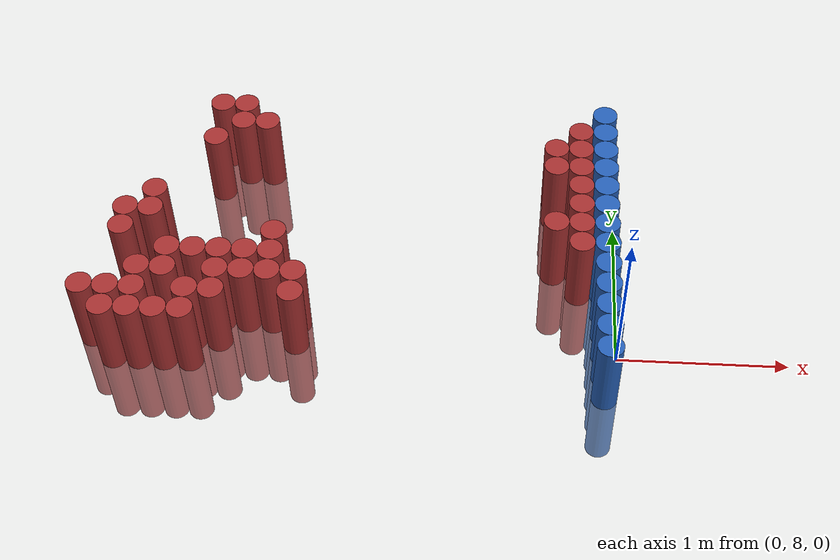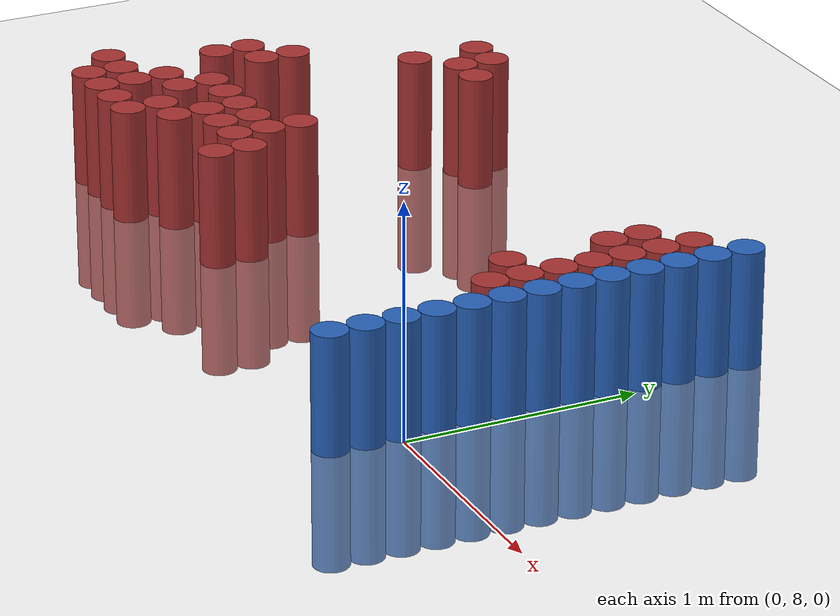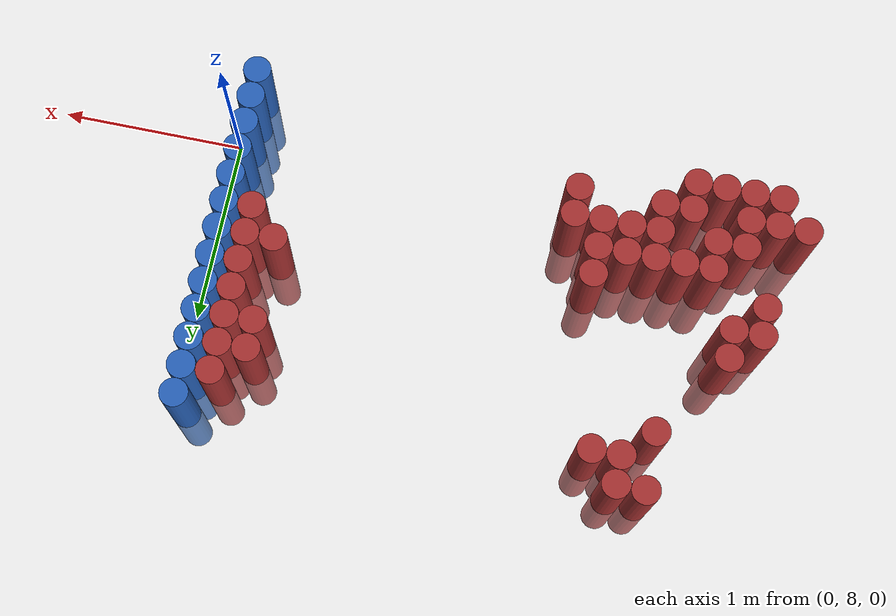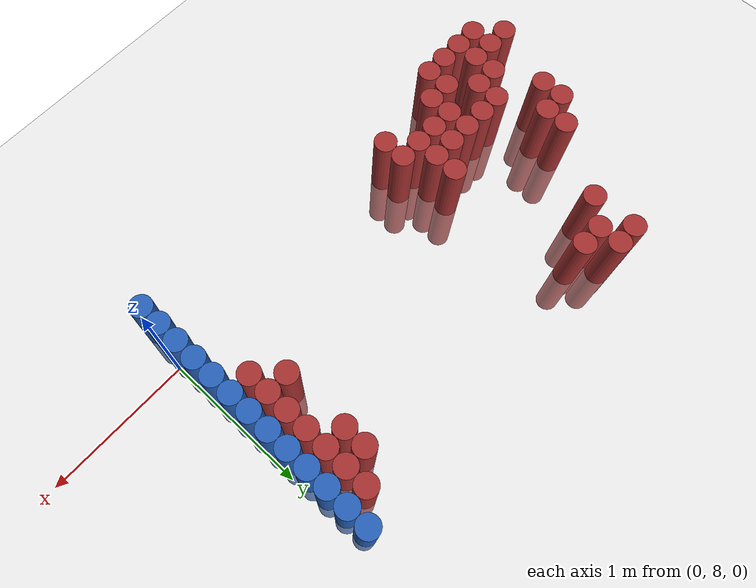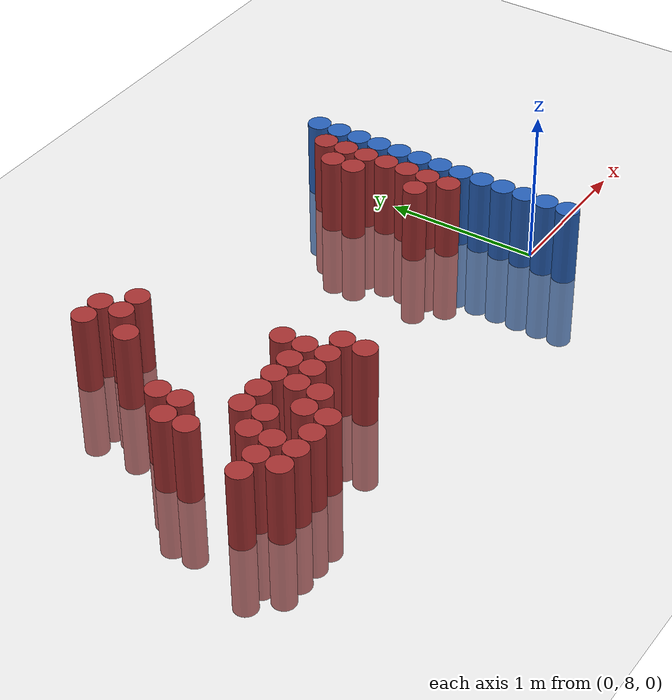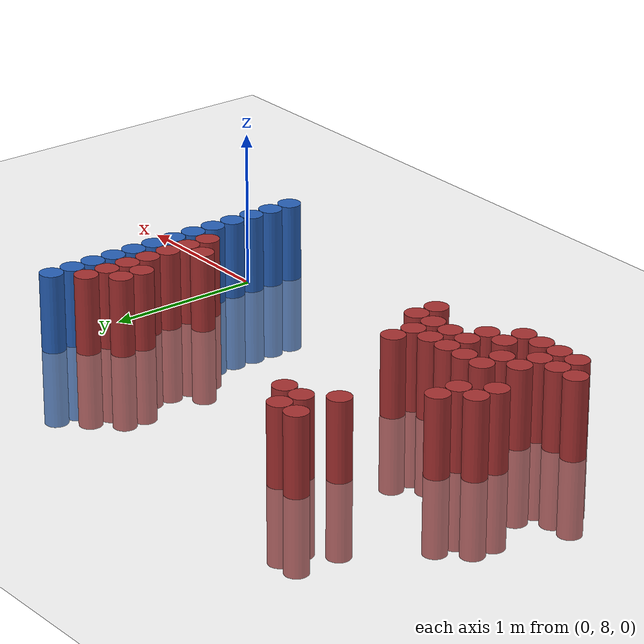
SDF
<sdf version="1.6">
 <world name="default">
  <model name="ground_plane">
   <static>1</static>
   <link name="link">
    <collision name="collision">
     <geometry><plane><normal>0 0 1</normal><size>100 100</size></plane></geometry>
     <surface><friction><ode><mu>100</mu><mu2>50</mu2></ode></friction></surface>
    </collision>
    <visual name="visual">
     <cast_shadows>0</cast_shadows>
     <geometry><plane><normal>0 0 1</normal><size>100 100</size></plane></geometry>
     <material>
      <script><uri>file://media/materials/scripts/gazebo.material</uri><name>Gazebo/Grey</name></script>
     </material>
    </visual>
   </link>
  </model>
  <model name="unit_cylinder_162">
   <static>1</static>
   <pose>-3.075000 8.025000 0.000000 0.000000 0.000000 0.000000</pose>
   <link name="link">
    <inertial>
     <mass>1</mass>
     <inertia><ixx>0.145833</ixx><ixy>0</ixy><ixz>0</ixz><iyy>0.145833</iyy><iyz>0</iyz><izz>0.125</izz></inertia>
    </inertial>
    <collision name="collision">
     <geometry><cylinder><radius>0.075000</radius><length>1</length></cylinder></geometry>
    </collision>
    <visual name="visual">
     <geometry><cylinder><radius>0.075000</radius><length>1</length></cylinder></geometry>
     <material>
      <ambient>0.648000 0.192000 0.192000 1</ambient>
      <diffuse>0.648000 0.192000 0.192000 1</diffuse>
     </material>
     <material>
      <script><name>Gazebo/Grey</name><uri>file://media/materials/scripts/gazebo.material</uri></script>
     </material>
    </visual>
   </link>
  </model>
  <model name="unit_cylinder_165">
   <static>1</static>
   <pose>-2.925000 7.875000 0.000000 0.000000 0.000000 0.000000</pose>
   <link name="link">
    <inertial>
     <mass>1</mass>
     <inertia><ixx>0.145833</ixx><ixy>0</ixy><ixz>0</ixz><iyy>0.145833</iyy><iyz>0</iyz><izz>0.125</izz></inertia>
    </inertial>
    <collision name="collision">
     <geometry><cylinder><radius>0.075000</radius><length>1</length></cylinder></geometry>
    </collision>
    <visual name="visual">
     <geometry><cylinder><radius>0.075000</radius><length>1</length></cylinder></geometry>
     <material>
      <ambient>0.648000 0.192000 0.192000 1</ambient>
      <diffuse>0.648000 0.192000 0.192000 1</diffuse>
     </material>
     <material>
      <script><name>Gazebo/Grey</name><uri>file://media/materials/scripts/gazebo.material</uri></script>
     </material>
    </visual>
   </link>
  </model>
  <model name="unit_cylinder_166">
   <static>1</static>
   <pose>-2.925000 8.025000 0.000000 0.000000 0.000000 0.000000</pose>
   <link name="link">
    <inertial>
     <mass>1</mass>
     <inertia><ixx>0.145833</ixx><ixy>0</ixy><ixz>0</ixz><iyy>0.145833</iyy><iyz>0</iyz><izz>0.125</izz></inertia>
    </inertial>
    <collision name="collision">
     <geometry><cylinder><radius>0.075000</radius><length>1</length></cylinder></geometry>
    </collision>
    <visual name="visual">
     <geometry><cylinder><radius>0.075000</radius><length>1</length></cylinder></geometry>
     <material>
      <ambient>0.648000 0.192000 0.192000 1</ambient>
      <diffuse>0.648000 0.192000 0.192000 1</diffuse>
     </material>
     <material>
      <script><name>Gazebo/Grey</name><uri>file://media/materials/scripts/gazebo.material</uri></script>
     </material>
    </visual>
   </link>
  </model>
  <model name="unit_cylinder_167">
   <static>1</static>
   <pose>-2.925000 8.475000 0.000000 0.000000 0.000000 0.000000</pose>
   <link name="link">
    <inertial>
     <mass>1</mass>
     <inertia><ixx>0.145833</ixx><ixy>0</ixy><ixz>0</ixz><iyy>0.145833</iyy><iyz>0</iyz><izz>0.125</izz></inertia>
    </inertial>
    <collision name="collision">
     <geometry><cylinder><radius>0.075000</radius><length>1</length></cylinder></geometry>
    </collision>
    <visual name="visual">
     <geometry><cylinder><radius>0.075000</radius><length>1</length></cylinder></geometry>
     <material>
      <ambient>0.648000 0.192000 0.192000 1</ambient>
      <diffuse>0.648000 0.192000 0.192000 1</diffuse>
     </material>
     <material>
      <script><name>Gazebo/Grey</name><uri>file://media/materials/scripts/gazebo.material</uri></script>
     </material>
    </visual>
   </link>
  </model>
  <model name="unit_cylinder_168">
   <static>1</static>
   <pose>-2.925000 8.625000 0.000000 0.000000 0.000000 0.000000</pose>
   <link name="link">
    <inertial>
     <mass>1</mass>
     <inertia><ixx>0.145833</ixx><ixy>0</ixy><ixz>0</ixz><iyy>0.145833</iyy><iyz>0</iyz><izz>0.125</izz></inertia>
    </inertial>
    <collision name="collision">
     <geometry><cylinder><radius>0.075000</radius><length>1</length></cylinder></geometry>
    </collision>
    <visual name="visual">
     <geometry><cylinder><radius>0.075000</radius><length>1</length></cylinder></geometry>
     <material>
      <ambient>0.648000 0.192000 0.192000 1</ambient>
      <diffuse>0.648000 0.192000 0.192000 1</diffuse>
     </material>
     <material>
      <script><name>Gazebo/Grey</name><uri>file://media/materials/scripts/gazebo.material</uri></script>
     </material>
    </visual>
   </link>
  </model>
  <model name="unit_cylinder_171">
   <static>1</static>
   <pose>-2.775000 7.875000 0.000000 0.000000 0.000000 0.000000</pose>
   <link name="link">
    <inertial>
     <mass>1</mass>
     <inertia><ixx>0.145833</ixx><ixy>0</ixy><ixz>0</ixz><iyy>0.145833</iyy><iyz>0</iyz><izz>0.125</izz></inertia>
    </inertial>
    <collision name="collision">
     <geometry><cylinder><radius>0.075000</radius><length>1</length></cylinder></geometry>
    </collision>
    <visual name="visual">
     <geometry><cylinder><radius>0.075000</radius><length>1</length></cylinder></geometry>
     <material>
      <ambient>0.648000 0.192000 0.192000 1</ambient>
      <diffuse>0.648000 0.192000 0.192000 1</diffuse>
     </material>
     <material>
      <script><name>Gazebo/Grey</name><uri>file://media/materials/scripts/gazebo.material</uri></script>
     </material>
    </visual>
   </link>
  </model>
  <model name="unit_cylinder_172">
   <static>1</static>
   <pose>-2.775000 8.025000 0.000000 0.000000 0.000000 0.000000</pose>
   <link name="link">
    <inertial>
     <mass>1</mass>
     <inertia><ixx>0.145833</ixx><ixy>0</ixy><ixz>0</ixz><iyy>0.145833</iyy><iyz>0</iyz><izz>0.125</izz></inertia>
    </inertial>
    <collision name="collision">
     <geometry><cylinder><radius>0.075000</radius><length>1</length></cylinder></geometry>
    </collision>
    <visual name="visual">
     <geometry><cylinder><radius>0.075000</radius><length>1</length></cylinder></geometry>
     <material>
      <ambient>0.648000 0.192000 0.192000 1</ambient>
      <diffuse>0.648000 0.192000 0.192000 1</diffuse>
     </material>
     <material>
      <script><name>Gazebo/Grey</name><uri>file://media/materials/scripts/gazebo.material</uri></script>
     </material>
    </visual>
   </link>
  </model>
  <model name="unit_cylinder_173">
   <static>1</static>
   <pose>-2.775000 8.175000 0.000000 0.000000 0.000000 0.000000</pose>
   <link name="link">
    <inertial>
     <mass>1</mass>
     <inertia><ixx>0.145833</ixx><ixy>0</ixy><ixz>0</ixz><iyy>0.145833</iyy><iyz>0</iyz><izz>0.125</izz></inertia>
    </inertial>
    <collision name="collision">
     <geometry><cylinder><radius>0.075000</radius><length>1</length></cylinder></geometry>
    </collision>
    <visual name="visual">
     <geometry><cylinder><radius>0.075000</radius><length>1</length></cylinder></geometry>
     <material>
      <ambient>0.648000 0.192000 0.192000 1</ambient>
      <diffuse>0.648000 0.192000 0.192000 1</diffuse>
     </material>
     <material>
      <script><name>Gazebo/Grey</name><uri>file://media/materials/scripts/gazebo.material</uri></script>
     </material>
    </visual>
   </link>
  </model>
  <model name="unit_cylinder_174">
   <static>1</static>
   <pose>-2.775000 8.625000 0.000000 0.000000 0.000000 0.000000</pose>
   <link name="link">
    <inertial>
     <mass>1</mass>
     <inertia><ixx>0.145833</ixx><ixy>0</ixy><ixz>0</ixz><iyy>0.145833</iyy><iyz>0</iyz><izz>0.125</izz></inertia>
    </inertial>
    <collision name="collision">
     <geometry><cylinder><radius>0.075000</radius><length>1</length></cylinder></geometry>
    </collision>
    <visual name="visual">
     <geometry><cylinder><radius>0.075000</radius><length>1</length></cylinder></geometry>
     <material>
      <ambient>0.648000 0.192000 0.192000 1</ambient>
      <diffuse>0.648000 0.192000 0.192000 1</diffuse>
     </material>
     <material>
      <script><name>Gazebo/Grey</name><uri>file://media/materials/scripts/gazebo.material</uri></script>
     </material>
    </visual>
   </link>
  </model>
  <model name="unit_cylinder_175">
   <static>1</static>
   <pose>-2.775000 8.775000 0.000000 0.000000 0.000000 0.000000</pose>
   <link name="link">
    <inertial>
     <mass>1</mass>
     <inertia><ixx>0.145833</ixx><ixy>0</ixy><ixz>0</ixz><iyy>0.145833</iyy><iyz>0</iyz><izz>0.125</izz></inertia>
    </inertial>
    <collision name="collision">
     <geometry><cylinder><radius>0.075000</radius><length>1</length></cylinder></geometry>
    </collision>
    <visual name="visual">
     <geometry><cylinder><radius>0.075000</radius><length>1</length></cylinder></geometry>
     <material>
      <ambient>0.648000 0.192000 0.192000 1</ambient>
      <diffuse>0.648000 0.192000 0.192000 1</diffuse>
     </material>
     <material>
      <script><name>Gazebo/Grey</name><uri>file://media/materials/scripts/gazebo.material</uri></script>
     </material>
    </visual>
   </link>
  </model>
  <model name="unit_cylinder_177">
   <static>1</static>
   <pose>-2.625000 7.875000 0.000000 0.000000 0.000000 0.000000</pose>
   <link name="link">
    <inertial>
     <mass>1</mass>
     <inertia><ixx>0.145833</ixx><ixy>0</ixy><ixz>0</ixz><iyy>0.145833</iyy><iyz>0</iyz><izz>0.125</izz></inertia>
    </inertial>
    <collision name="collision">
     <geometry><cylinder><radius>0.075000</radius><length>1</length></cylinder></geometry>
    </collision>
    <visual name="visual">
     <geometry><cylinder><radius>0.075000</radius><length>1</length></cylinder></geometry>
     <material>
      <ambient>0.648000 0.192000 0.192000 1</ambient>
      <diffuse>0.648000 0.192000 0.192000 1</diffuse>
     </material>
     <material>
      <script><name>Gazebo/Grey</name><uri>file://media/materials/scripts/gazebo.material</uri></script>
     </material>
    </visual>
   </link>
  </model>
  <model name="unit_cylinder_178">
   <static>1</static>
   <pose>-2.625000 8.175000 0.000000 0.000000 0.000000 0.000000</pose>
   <link name="link">
    <inertial>
     <mass>1</mass>
     <inertia><ixx>0.145833</ixx><ixy>0</ixy><ixz>0</ixz><iyy>0.145833</iyy><iyz>0</iyz><izz>0.125</izz></inertia>
    </inertial>
    <collision name="collision">
     <geometry><cylinder><radius>0.075000</radius><length>1</length></cylinder></geometry>
    </collision>
    <visual name="visual">
     <geometry><cylinder><radius>0.075000</radius><length>1</length></cylinder></geometry>
     <material>
      <ambient>0.648000 0.192000 0.192000 1</ambient>
      <diffuse>0.648000 0.192000 0.192000 1</diffuse>
     </material>
     <material>
      <script><name>Gazebo/Grey</name><uri>file://media/materials/scripts/gazebo.material</uri></script>
     </material>
    </visual>
   </link>
  </model>
  <model name="unit_cylinder_179">
   <static>1</static>
   <pose>-2.625000 8.325000 0.000000 0.000000 0.000000 0.000000</pose>
   <link name="link">
    <inertial>
     <mass>1</mass>
     <inertia><ixx>0.145833</ixx><ixy>0</ixy><ixz>0</ixz><iyy>0.145833</iyy><iyz>0</iyz><izz>0.125</izz></inertia>
    </inertial>
    <collision name="collision">
     <geometry><cylinder><radius>0.075000</radius><length>1</length></cylinder></geometry>
    </collision>
    <visual name="visual">
     <geometry><cylinder><radius>0.075000</radius><length>1</length></cylinder></geometry>
     <material>
      <ambient>0.648000 0.192000 0.192000 1</ambient>
      <diffuse>0.648000 0.192000 0.192000 1</diffuse>
     </material>
     <material>
      <script><name>Gazebo/Grey</name><uri>file://media/materials/scripts/gazebo.material</uri></script>
     </material>
    </visual>
   </link>
  </model>
  <model name="unit_cylinder_180">
   <static>1</static>
   <pose>-2.475000 7.875000 0.000000 0.000000 0.000000 0.000000</pose>
   <link name="link">
    <inertial>
     <mass>1</mass>
     <inertia><ixx>0.145833</ixx><ixy>0</ixy><ixz>0</ixz><iyy>0.145833</iyy><iyz>0</iyz><izz>0.125</izz></inertia>
    </inertial>
    <collision name="collision">
     <geometry><cylinder><radius>0.075000</radius><length>1</length></cylinder></geometry>
    </collision>
    <visual name="visual">
     <geometry><cylinder><radius>0.075000</radius><length>1</length></cylinder></geometry>
     <material>
      <ambient>0.648000 0.192000 0.192000 1</ambient>
      <diffuse>0.648000 0.192000 0.192000 1</diffuse>
     </material>
     <material>
      <script><name>Gazebo/Grey</name><uri>file://media/materials/scripts/gazebo.material</uri></script>
     </material>
    </visual>
   </link>
  </model>
  <model name="unit_cylinder_181">
   <static>1</static>
   <pose>-2.475000 8.025000 0.000000 0.000000 0.000000 0.000000</pose>
   <link name="link">
    <inertial>
     <mass>1</mass>
     <inertia><ixx>0.145833</ixx><ixy>0</ixy><ixz>0</ixz><iyy>0.145833</iyy><iyz>0</iyz><izz>0.125</izz></inertia>
    </inertial>
    <collision name="collision">
     <geometry><cylinder><radius>0.075000</radius><length>1</length></cylinder></geometry>
    </collision>
    <visual name="visual">
     <geometry><cylinder><radius>0.075000</radius><length>1</length></cylinder></geometry>
     <material>
      <ambient>0.648000 0.192000 0.192000 1</ambient>
      <diffuse>0.648000 0.192000 0.192000 1</diffuse>
     </material>
     <material>
      <script><name>Gazebo/Grey</name><uri>file://media/materials/scripts/gazebo.material</uri></script>
     </material>
    </visual>
   </link>
  </model>
  <model name="unit_cylinder_182">
   <static>1</static>
   <pose>-2.475000 8.325000 0.000000 0.000000 0.000000 0.000000</pose>
   <link name="link">
    <inertial>
     <mass>1</mass>
     <inertia><ixx>0.145833</ixx><ixy>0</ixy><ixz>0</ixz><iyy>0.145833</iyy><iyz>0</iyz><izz>0.125</izz></inertia>
    </inertial>
    <collision name="collision">
     <geometry><cylinder><radius>0.075000</radius><length>1</length></cylinder></geometry>
    </collision>
    <visual name="visual">
     <geometry><cylinder><radius>0.075000</radius><length>1</length></cylinder></geometry>
     <material>
      <ambient>0.648000 0.192000 0.192000 1</ambient>
      <diffuse>0.648000 0.192000 0.192000 1</diffuse>
     </material>
     <material>
      <script><name>Gazebo/Grey</name><uri>file://media/materials/scripts/gazebo.material</uri></script>
     </material>
    </visual>
   </link>
  </model>
  <model name="unit_cylinder_183">
   <static>1</static>
   <pose>-2.475000 9.225000 0.000000 0.000000 0.000000 0.000000</pose>
   <link name="link">
    <inertial>
     <mass>1</mass>
     <inertia><ixx>0.145833</ixx><ixy>0</ixy><ixz>0</ixz><iyy>0.145833</iyy><iyz>0</iyz><izz>0.125</izz></inertia>
    </inertial>
    <collision name="collision">
     <geometry><cylinder><radius>0.075000</radius><length>1</length></cylinder></geometry>
    </collision>
    <visual name="visual">
     <geometry><cylinder><radius>0.075000</radius><length>1</length></cylinder></geometry>
     <material>
      <ambient>0.648000 0.192000 0.192000 1</ambient>
      <diffuse>0.648000 0.192000 0.192000 1</diffuse>
     </material>
     <material>
      <script><name>Gazebo/Grey</name><uri>file://media/materials/scripts/gazebo.material</uri></script>
     </material>
    </visual>
   </link>
  </model>
  <model name="unit_cylinder_184">
   <static>1</static>
   <pose>-2.475000 9.525000 0.000000 0.000000 0.000000 0.000000</pose>
   <link name="link">
    <inertial>
     <mass>1</mass>
     <inertia><ixx>0.145833</ixx><ixy>0</ixy><ixz>0</ixz><iyy>0.145833</iyy><iyz>0</iyz><izz>0.125</izz></inertia>
    </inertial>
    <collision name="collision">
     <geometry><cylinder><radius>0.075000</radius><length>1</length></cylinder></geometry>
    </collision>
    <visual name="visual">
     <geometry><cylinder><radius>0.075000</radius><length>1</length></cylinder></geometry>
     <material>
      <ambient>0.648000 0.192000 0.192000 1</ambient>
      <diffuse>0.648000 0.192000 0.192000 1</diffuse>
     </material>
     <material>
      <script><name>Gazebo/Grey</name><uri>file://media/materials/scripts/gazebo.material</uri></script>
     </material>
    </visual>
   </link>
  </model>
  <model name="unit_cylinder_185">
   <static>1</static>
   <pose>-2.325000 8.025000 0.000000 0.000000 0.000000 0.000000</pose>
   <link name="link">
    <inertial>
     <mass>1</mass>
     <inertia><ixx>0.145833</ixx><ixy>0</ixy><ixz>0</ixz><iyy>0.145833</iyy><iyz>0</iyz><izz>0.125</izz></inertia>
    </inertial>
    <collision name="collision">
     <geometry><cylinder><radius>0.075000</radius><length>1</length></cylinder></geometry>
    </collision>
    <visual name="visual">
     <geometry><cylinder><radius>0.075000</radius><length>1</length></cylinder></geometry>
     <material>
      <ambient>0.648000 0.192000 0.192000 1</ambient>
      <diffuse>0.648000 0.192000 0.192000 1</diffuse>
     </material>
     <material>
      <script><name>Gazebo/Grey</name><uri>file://media/materials/scripts/gazebo.material</uri></script>
     </material>
    </visual>
   </link>
  </model>
  <model name="unit_cylinder_186">
   <static>1</static>
   <pose>-2.325000 8.175000 0.000000 0.000000 0.000000 0.000000</pose>
   <link name="link">
    <inertial>
     <mass>1</mass>
     <inertia><ixx>0.145833</ixx><ixy>0</ixy><ixz>0</ixz><iyy>0.145833</iyy><iyz>0</iyz><izz>0.125</izz></inertia>
    </inertial>
    <collision name="collision">
     <geometry><cylinder><radius>0.075000</radius><length>1</length></cylinder></geometry>
    </collision>
    <visual name="visual">
     <geometry><cylinder><radius>0.075000</radius><length>1</length></cylinder></geometry>
     <material>
      <ambient>0.648000 0.192000 0.192000 1</ambient>
      <diffuse>0.648000 0.192000 0.192000 1</diffuse>
     </material>
     <material>
      <script><name>Gazebo/Grey</name><uri>file://media/materials/scripts/gazebo.material</uri></script>
     </material>
    </visual>
   </link>
  </model>
  <model name="unit_cylinder_187">
   <static>1</static>
   <pose>-2.325000 8.325000 0.000000 0.000000 0.000000 0.000000</pose>
   <link name="link">
    <inertial>
     <mass>1</mass>
     <inertia><ixx>0.145833</ixx><ixy>0</ixy><ixz>0</ixz><iyy>0.145833</iyy><iyz>0</iyz><izz>0.125</izz></inertia>
    </inertial>
    <collision name="collision">
     <geometry><cylinder><radius>0.075000</radius><length>1</length></cylinder></geometry>
    </collision>
    <visual name="visual">
     <geometry><cylinder><radius>0.075000</radius><length>1</length></cylinder></geometry>
     <material>
      <ambient>0.648000 0.192000 0.192000 1</ambient>
      <diffuse>0.648000 0.192000 0.192000 1</diffuse>
     </material>
     <material>
      <script><name>Gazebo/Grey</name><uri>file://media/materials/scripts/gazebo.material</uri></script>
     </material>
    </visual>
   </link>
  </model>
  <model name="unit_cylinder_188">
   <static>1</static>
   <pose>-2.325000 9.375000 0.000000 0.000000 0.000000 0.000000</pose>
   <link name="link">
    <inertial>
     <mass>1</mass>
     <inertia><ixx>0.145833</ixx><ixy>0</ixy><ixz>0</ixz><iyy>0.145833</iyy><iyz>0</iyz><izz>0.125</izz></inertia>
    </inertial>
    <collision name="collision">
     <geometry><cylinder><radius>0.075000</radius><length>1</length></cylinder></geometry>
    </collision>
    <visual name="visual">
     <geometry><cylinder><radius>0.075000</radius><length>1</length></cylinder></geometry>
     <material>
      <ambient>0.648000 0.192000 0.192000 1</ambient>
      <diffuse>0.648000 0.192000 0.192000 1</diffuse>
     </material>
     <material>
      <script><name>Gazebo/Grey</name><uri>file://media/materials/scripts/gazebo.material</uri></script>
     </material>
    </visual>
   </link>
  </model>
  <model name="unit_cylinder_189">
   <static>1</static>
   <pose>-2.325000 9.525000 0.000000 0.000000 0.000000 0.000000</pose>
   <link name="link">
    <inertial>
     <mass>1</mass>
     <inertia><ixx>0.145833</ixx><ixy>0</ixy><ixz>0</ixz><iyy>0.145833</iyy><iyz>0</iyz><izz>0.125</izz></inertia>
    </inertial>
    <collision name="collision">
     <geometry><cylinder><radius>0.075000</radius><length>1</length></cylinder></geometry>
    </collision>
    <visual name="visual">
     <geometry><cylinder><radius>0.075000</radius><length>1</length></cylinder></geometry>
     <material>
      <ambient>0.648000 0.192000 0.192000 1</ambient>
      <diffuse>0.648000 0.192000 0.192000 1</diffuse>
     </material>
     <material>
      <script><name>Gazebo/Grey</name><uri>file://media/materials/scripts/gazebo.material</uri></script>
     </material>
    </visual>
   </link>
  </model>
  <model name="unit_cylinder_190">
   <static>1</static>
   <pose>-2.175000 8.175000 0.000000 0.000000 0.000000 0.000000</pose>
   <link name="link">
    <inertial>
     <mass>1</mass>
     <inertia><ixx>0.145833</ixx><ixy>0</ixy><ixz>0</ixz><iyy>0.145833</iyy><iyz>0</iyz><izz>0.125</izz></inertia>
    </inertial>
    <collision name="collision">
     <geometry><cylinder><radius>0.075000</radius><length>1</length></cylinder></geometry>
    </collision>
    <visual name="visual">
     <geometry><cylinder><radius>0.075000</radius><length>1</length></cylinder></geometry>
     <material>
      <ambient>0.648000 0.192000 0.192000 1</ambient>
      <diffuse>0.648000 0.192000 0.192000 1</diffuse>
     </material>
     <material>
      <script><name>Gazebo/Grey</name><uri>file://media/materials/scripts/gazebo.material</uri></script>
     </material>
    </visual>
   </link>
  </model>
  <model name="unit_cylinder_191">
   <static>1</static>
   <pose>-2.175000 8.325000 0.000000 0.000000 0.000000 0.000000</pose>
   <link name="link">
    <inertial>
     <mass>1</mass>
     <inertia><ixx>0.145833</ixx><ixy>0</ixy><ixz>0</ixz><iyy>0.145833</iyy><iyz>0</iyz><izz>0.125</izz></inertia>
    </inertial>
    <collision name="collision">
     <geometry><cylinder><radius>0.075000</radius><length>1</length></cylinder></geometry>
    </collision>
    <visual name="visual">
     <geometry><cylinder><radius>0.075000</radius><length>1</length></cylinder></geometry>
     <material>
      <ambient>0.648000 0.192000 0.192000 1</ambient>
      <diffuse>0.648000 0.192000 0.192000 1</diffuse>
     </material>
     <material>
      <script><name>Gazebo/Grey</name><uri>file://media/materials/scripts/gazebo.material</uri></script>
     </material>
    </visual>
   </link>
  </model>
  <model name="unit_cylinder_192">
   <static>1</static>
   <pose>-2.175000 9.375000 0.000000 0.000000 0.000000 0.000000</pose>
   <link name="link">
    <inertial>
     <mass>1</mass>
     <inertia><ixx>0.145833</ixx><ixy>0</ixy><ixz>0</ixz><iyy>0.145833</iyy><iyz>0</iyz><izz>0.125</izz></inertia>
    </inertial>
    <collision name="collision">
     <geometry><cylinder><radius>0.075000</radius><length>1</length></cylinder></geometry>
    </collision>
    <visual name="visual">
     <geometry><cylinder><radius>0.075000</radius><length>1</length></cylinder></geometry>
     <material>
      <ambient>0.648000 0.192000 0.192000 1</ambient>
      <diffuse>0.648000 0.192000 0.192000 1</diffuse>
     </material>
     <material>
      <script><name>Gazebo/Grey</name><uri>file://media/materials/scripts/gazebo.material</uri></script>
     </material>
    </visual>
   </link>
  </model>
  <model name="unit_cylinder_193">
   <static>1</static>
   <pose>-2.025000 8.175000 0.000000 0.000000 0.000000 0.000000</pose>
   <link name="link">
    <inertial>
     <mass>1</mass>
     <inertia><ixx>0.145833</ixx><ixy>0</ixy><ixz>0</ixz><iyy>0.145833</iyy><iyz>0</iyz><izz>0.125</izz></inertia>
    </inertial>
    <collision name="collision">
     <geometry><cylinder><radius>0.075000</radius><length>1</length></cylinder></geometry>
    </collision>
    <visual name="visual">
     <geometry><cylinder><radius>0.075000</radius><length>1</length></cylinder></geometry>
     <material>
      <ambient>0.648000 0.192000 0.192000 1</ambient>
      <diffuse>0.648000 0.192000 0.192000 1</diffuse>
     </material>
     <material>
      <script><name>Gazebo/Grey</name><uri>file://media/materials/scripts/gazebo.material</uri></script>
     </material>
    </visual>
   </link>
  </model>
  <model name="unit_cylinder_194">
   <static>1</static>
   <pose>-2.025000 8.325000 0.000000 0.000000 0.000000 0.000000</pose>
   <link name="link">
    <inertial>
     <mass>1</mass>
     <inertia><ixx>0.145833</ixx><ixy>0</ixy><ixz>0</ixz><iyy>0.145833</iyy><iyz>0</iyz><izz>0.125</izz></inertia>
    </inertial>
    <collision name="collision">
     <geometry><cylinder><radius>0.075000</radius><length>1</length></cylinder></geometry>
    </collision>
    <visual name="visual">
     <geometry><cylinder><radius>0.075000</radius><length>1</length></cylinder></geometry>
     <material>
      <ambient>0.648000 0.192000 0.192000 1</ambient>
      <diffuse>0.648000 0.192000 0.192000 1</diffuse>
     </material>
     <material>
      <script><name>Gazebo/Grey</name><uri>file://media/materials/scripts/gazebo.material</uri></script>
     </material>
    </visual>
   </link>
  </model>
  <model name="unit_cylinder_195">
   <static>1</static>
   <pose>-2.025000 8.475000 0.000000 0.000000 0.000000 0.000000</pose>
   <link name="link">
    <inertial>
     <mass>1</mass>
     <inertia><ixx>0.145833</ixx><ixy>0</ixy><ixz>0</ixz><iyy>0.145833</iyy><iyz>0</iyz><izz>0.125</izz></inertia>
    </inertial>
    <collision name="collision">
     <geometry><cylinder><radius>0.075000</radius><length>1</length></cylinder></geometry>
    </collision>
    <visual name="visual">
     <geometry><cylinder><radius>0.075000</radius><length>1</length></cylinder></geometry>
     <material>
      <ambient>0.648000 0.192000 0.192000 1</ambient>
      <diffuse>0.648000 0.192000 0.192000 1</diffuse>
     </material>
     <material>
      <script><name>Gazebo/Grey</name><uri>file://media/materials/scripts/gazebo.material</uri></script>
     </material>
    </visual>
   </link>
  </model>
  <model name="unit_cylinder_199">
   <static>1</static>
   <pose>-1.875000 8.025000 0.000000 0.000000 0.000000 0.000000</pose>
   <link name="link">
    <inertial>
     <mass>1</mass>
     <inertia><ixx>0.145833</ixx><ixy>0</ixy><ixz>0</ixz><iyy>0.145833</iyy><iyz>0</iyz><izz>0.125</izz></inertia>
    </inertial>
    <collision name="collision">
     <geometry><cylinder><radius>0.075000</radius><length>1</length></cylinder></geometry>
    </collision>
    <visual name="visual">
     <geometry><cylinder><radius>0.075000</radius><length>1</length></cylinder></geometry>
     <material>
      <ambient>0.648000 0.192000 0.192000 1</ambient>
      <diffuse>0.648000 0.192000 0.192000 1</diffuse>
     </material>
     <material>
      <script><name>Gazebo/Grey</name><uri>file://media/materials/scripts/gazebo.material</uri></script>
     </material>
    </visual>
   </link>
  </model>
  <model name="unit_cylinder_200">
   <static>1</static>
   <pose>-1.875000 8.175000 0.000000 0.000000 0.000000 0.000000</pose>
   <link name="link">
    <inertial>
     <mass>1</mass>
     <inertia><ixx>0.145833</ixx><ixy>0</ixy><ixz>0</ixz><iyy>0.145833</iyy><iyz>0</iyz><izz>0.125</izz></inertia>
    </inertial>
    <collision name="collision">
     <geometry><cylinder><radius>0.075000</radius><length>1</length></cylinder></geometry>
    </collision>
    <visual name="visual">
     <geometry><cylinder><radius>0.075000</radius><length>1</length></cylinder></geometry>
     <material>
      <ambient>0.648000 0.192000 0.192000 1</ambient>
      <diffuse>0.648000 0.192000 0.192000 1</diffuse>
     </material>
     <material>
      <script><name>Gazebo/Grey</name><uri>file://media/materials/scripts/gazebo.material</uri></script>
     </material>
    </visual>
   </link>
  </model>
  <model name="unit_cylinder_224">
   <static>1</static>
   <pose>-0.375000 8.625000 0.000000 0.000000 0.000000 0.000000</pose>
   <link name="link">
    <inertial>
     <mass>1</mass>
     <inertia><ixx>0.145833</ixx><ixy>0</ixy><ixz>0</ixz><iyy>0.145833</iyy><iyz>0</iyz><izz>0.125</izz></inertia>
    </inertial>
    <collision name="collision">
     <geometry><cylinder><radius>0.075000</radius><length>1</length></cylinder></geometry>
    </collision>
    <visual name="visual">
     <geometry><cylinder><radius>0.075000</radius><length>1</length></cylinder></geometry>
     <material>
      <ambient>0.648000 0.192000 0.192000 1</ambient>
      <diffuse>0.648000 0.192000 0.192000 1</diffuse>
     </material>
     <material>
      <script><name>Gazebo/Grey</name><uri>file://media/materials/scripts/gazebo.material</uri></script>
     </material>
    </visual>
   </link>
  </model>
  <model name="unit_cylinder_225">
   <static>1</static>
   <pose>-0.375000 9.075000 0.000000 0.000000 0.000000 0.000000</pose>
   <link name="link">
    <inertial>
     <mass>1</mass>
     <inertia><ixx>0.145833</ixx><ixy>0</ixy><ixz>0</ixz><iyy>0.145833</iyy><iyz>0</iyz><izz>0.125</izz></inertia>
    </inertial>
    <collision name="collision">
     <geometry><cylinder><radius>0.075000</radius><length>1</length></cylinder></geometry>
    </collision>
    <visual name="visual">
     <geometry><cylinder><radius>0.075000</radius><length>1</length></cylinder></geometry>
     <material>
      <ambient>0.648000 0.192000 0.192000 1</ambient>
      <diffuse>0.648000 0.192000 0.192000 1</diffuse>
     </material>
     <material>
      <script><name>Gazebo/Grey</name><uri>file://media/materials/scripts/gazebo.material</uri></script>
     </material>
    </visual>
   </link>
  </model>
  <model name="unit_cylinder_226">
   <static>1</static>
   <pose>-0.375000 9.225000 0.000000 0.000000 0.000000 0.000000</pose>
   <link name="link">
    <inertial>
     <mass>1</mass>
     <inertia><ixx>0.145833</ixx><ixy>0</ixy><ixz>0</ixz><iyy>0.145833</iyy><iyz>0</iyz><izz>0.125</izz></inertia>
    </inertial>
    <collision name="collision">
     <geometry><cylinder><radius>0.075000</radius><length>1</length></cylinder></geometry>
    </collision>
    <visual name="visual">
     <geometry><cylinder><radius>0.075000</radius><length>1</length></cylinder></geometry>
     <material>
      <ambient>0.648000 0.192000 0.192000 1</ambient>
      <diffuse>0.648000 0.192000 0.192000 1</diffuse>
     </material>
     <material>
      <script><name>Gazebo/Grey</name><uri>file://media/materials/scripts/gazebo.material</uri></script>
     </material>
    </visual>
   </link>
  </model>
  <model name="unit_cylinder_232">
   <static>1</static>
   <pose>-0.225000 8.475000 0.000000 0.000000 0.000000 0.000000</pose>
   <link name="link">
    <inertial>
     <mass>1</mass>
     <inertia><ixx>0.145833</ixx><ixy>0</ixy><ixz>0</ixz><iyy>0.145833</iyy><iyz>0</iyz><izz>0.125</izz></inertia>
    </inertial>
    <collision name="collision">
     <geometry><cylinder><radius>0.075000</radius><length>1</length></cylinder></geometry>
    </collision>
    <visual name="visual">
     <geometry><cylinder><radius>0.075000</radius><length>1</length></cylinder></geometry>
     <material>
      <ambient>0.648000 0.192000 0.192000 1</ambient>
      <diffuse>0.648000 0.192000 0.192000 1</diffuse>
     </material>
     <material>
      <script><name>Gazebo/Grey</name><uri>file://media/materials/scripts/gazebo.material</uri></script>
     </material>
    </visual>
   </link>
  </model>
  <model name="unit_cylinder_233">
   <static>1</static>
   <pose>-0.225000 8.625000 0.000000 0.000000 0.000000 0.000000</pose>
   <link name="link">
    <inertial>
     <mass>1</mass>
     <inertia><ixx>0.145833</ixx><ixy>0</ixy><ixz>0</ixz><iyy>0.145833</iyy><iyz>0</iyz><izz>0.125</izz></inertia>
    </inertial>
    <collision name="collision">
     <geometry><cylinder><radius>0.075000</radius><length>1</length></cylinder></geometry>
    </collision>
    <visual name="visual">
     <geometry><cylinder><radius>0.075000</radius><length>1</length></cylinder></geometry>
     <material>
      <ambient>0.648000 0.192000 0.192000 1</ambient>
      <diffuse>0.648000 0.192000 0.192000 1</diffuse>
     </material>
     <material>
      <script><name>Gazebo/Grey</name><uri>file://media/materials/scripts/gazebo.material</uri></script>
     </material>
    </visual>
   </link>
  </model>
  <model name="unit_cylinder_234">
   <static>1</static>
   <pose>-0.225000 8.775000 0.000000 0.000000 0.000000 0.000000</pose>
   <link name="link">
    <inertial>
     <mass>1</mass>
     <inertia><ixx>0.145833</ixx><ixy>0</ixy><ixz>0</ixz><iyy>0.145833</iyy><iyz>0</iyz><izz>0.125</izz></inertia>
    </inertial>
    <collision name="collision">
     <geometry><cylinder><radius>0.075000</radius><length>1</length></cylinder></geometry>
    </collision>
    <visual name="visual">
     <geometry><cylinder><radius>0.075000</radius><length>1</length></cylinder></geometry>
     <material>
      <ambient>0.648000 0.192000 0.192000 1</ambient>
      <diffuse>0.648000 0.192000 0.192000 1</diffuse>
     </material>
     <material>
      <script><name>Gazebo/Grey</name><uri>file://media/materials/scripts/gazebo.material</uri></script>
     </material>
    </visual>
   </link>
  </model>
  <model name="unit_cylinder_235">
   <static>1</static>
   <pose>-0.225000 8.925000 0.000000 0.000000 0.000000 0.000000</pose>
   <link name="link">
    <inertial>
     <mass>1</mass>
     <inertia><ixx>0.145833</ixx><ixy>0</ixy><ixz>0</ixz><iyy>0.145833</iyy><iyz>0</iyz><izz>0.125</izz></inertia>
    </inertial>
    <collision name="collision">
     <geometry><cylinder><radius>0.075000</radius><length>1</length></cylinder></geometry>
    </collision>
    <visual name="visual">
     <geometry><cylinder><radius>0.075000</radius><length>1</length></cylinder></geometry>
     <material>
      <ambient>0.648000 0.192000 0.192000 1</ambient>
      <diffuse>0.648000 0.192000 0.192000 1</diffuse>
     </material>
     <material>
      <script><name>Gazebo/Grey</name><uri>file://media/materials/scripts/gazebo.material</uri></script>
     </material>
    </visual>
   </link>
  </model>
  <model name="unit_cylinder_236">
   <static>1</static>
   <pose>-0.225000 9.075000 0.000000 0.000000 0.000000 0.000000</pose>
   <link name="link">
    <inertial>
     <mass>1</mass>
     <inertia><ixx>0.145833</ixx><ixy>0</ixy><ixz>0</ixz><iyy>0.145833</iyy><iyz>0</iyz><izz>0.125</izz></inertia>
    </inertial>
    <collision name="collision">
     <geometry><cylinder><radius>0.075000</radius><length>1</length></cylinder></geometry>
    </collision>
    <visual name="visual">
     <geometry><cylinder><radius>0.075000</radius><length>1</length></cylinder></geometry>
     <material>
      <ambient>0.648000 0.192000 0.192000 1</ambient>
      <diffuse>0.648000 0.192000 0.192000 1</diffuse>
     </material>
     <material>
      <script><name>Gazebo/Grey</name><uri>file://media/materials/scripts/gazebo.material</uri></script>
     </material>
    </visual>
   </link>
  </model>
  <model name="unit_cylinder_237">
   <static>1</static>
   <pose>-0.225000 9.225000 0.000000 0.000000 0.000000 0.000000</pose>
   <link name="link">
    <inertial>
     <mass>1</mass>
     <inertia><ixx>0.145833</ixx><ixy>0</ixy><ixz>0</ixz><iyy>0.145833</iyy><iyz>0</iyz><izz>0.125</izz></inertia>
    </inertial>
    <collision name="collision">
     <geometry><cylinder><radius>0.075000</radius><length>1</length></cylinder></geometry>
    </collision>
    <visual name="visual">
     <geometry><cylinder><radius>0.075000</radius><length>1</length></cylinder></geometry>
     <material>
      <ambient>0.648000 0.192000 0.192000 1</ambient>
      <diffuse>0.648000 0.192000 0.192000 1</diffuse>
     </material>
     <material>
      <script><name>Gazebo/Grey</name><uri>file://media/materials/scripts/gazebo.material</uri></script>
     </material>
    </visual>
   </link>
  </model>
  <model name="unit_cylinder_238">
   <static>1</static>
   <pose>-0.225000 9.375000 0.000000 0.000000 0.000000 0.000000</pose>
   <link name="link">
    <inertial>
     <mass>1</mass>
     <inertia><ixx>0.145833</ixx><ixy>0</ixy><ixz>0</ixz><iyy>0.145833</iyy><iyz>0</iyz><izz>0.125</izz></inertia>
    </inertial>
    <collision name="collision">
     <geometry><cylinder><radius>0.075000</radius><length>1</length></cylinder></geometry>
    </collision>
    <visual name="visual">
     <geometry><cylinder><radius>0.075000</radius><length>1</length></cylinder></geometry>
     <material>
      <ambient>0.648000 0.192000 0.192000 1</ambient>
      <diffuse>0.648000 0.192000 0.192000 1</diffuse>
     </material>
     <material>
      <script><name>Gazebo/Grey</name><uri>file://media/materials/scripts/gazebo.material</uri></script>
     </material>
    </visual>
   </link>
  </model>
  <model name="unit_cylinder_256">
   <static>1</static>
   <pose>-0.075000 7.725000 0.000000 0.000000 0.000000 0.000000</pose>
   <link name="link">
    <inertial>
     <mass>1</mass>
     <inertia><ixx>0.145833</ixx><ixy>0</ixy><ixz>0</ixz><iyy>0.145833</iyy><iyz>0</iyz><izz>0.125</izz></inertia>
    </inertial>
    <collision name="collision">
     <geometry><cylinder><radius>0.075000</radius><length>1</length></cylinder></geometry>
    </collision>
    <visual name="visual">
     <geometry><cylinder><radius>0.075000</radius><length>1</length></cylinder></geometry>
     <material>
      <ambient>0.152000 0.379000 0.720000 1</ambient>
      <diffuse>0.152000 0.379000 0.720000 1</diffuse>
     </material>
     <material>
      <script><name>Gazebo/Grey</name><uri>file://media/materials/scripts/gazebo.material</uri></script>
     </material>
    </visual>
   </link>
  </model>
  <model name="unit_cylinder_257">
   <static>1</static>
   <pose>-0.075000 7.875000 0.000000 0.000000 0.000000 0.000000</pose>
   <link name="link">
    <inertial>
     <mass>1</mass>
     <inertia><ixx>0.145833</ixx><ixy>0</ixy><ixz>0</ixz><iyy>0.145833</iyy><iyz>0</iyz><izz>0.125</izz></inertia>
    </inertial>
    <collision name="collision">
     <geometry><cylinder><radius>0.075000</radius><length>1</length></cylinder></geometry>
    </collision>
    <visual name="visual">
     <geometry><cylinder><radius>0.075000</radius><length>1</length></cylinder></geometry>
     <material>
      <ambient>0.152000 0.379000 0.720000 1</ambient>
      <diffuse>0.152000 0.379000 0.720000 1</diffuse>
     </material>
     <material>
      <script><name>Gazebo/Grey</name><uri>file://media/materials/scripts/gazebo.material</uri></script>
     </material>
    </visual>
   </link>
  </model>
  <model name="unit_cylinder_258">
   <static>1</static>
   <pose>-0.075000 8.025000 0.000000 0.000000 0.000000 0.000000</pose>
   <link name="link">
    <inertial>
     <mass>1</mass>
     <inertia><ixx>0.145833</ixx><ixy>0</ixy><ixz>0</ixz><iyy>0.145833</iyy><iyz>0</iyz><izz>0.125</izz></inertia>
    </inertial>
    <collision name="collision">
     <geometry><cylinder><radius>0.075000</radius><length>1</length></cylinder></geometry>
    </collision>
    <visual name="visual">
     <geometry><cylinder><radius>0.075000</radius><length>1</length></cylinder></geometry>
     <material>
      <ambient>0.152000 0.379000 0.720000 1</ambient>
      <diffuse>0.152000 0.379000 0.720000 1</diffuse>
     </material>
     <material>
      <script><name>Gazebo/Grey</name><uri>file://media/materials/scripts/gazebo.material</uri></script>
     </material>
    </visual>
   </link>
  </model>
  <model name="unit_cylinder_259">
   <static>1</static>
   <pose>-0.075000 8.175000 0.000000 0.000000 0.000000 0.000000</pose>
   <link name="link">
    <inertial>
     <mass>1</mass>
     <inertia><ixx>0.145833</ixx><ixy>0</ixy><ixz>0</ixz><iyy>0.145833</iyy><iyz>0</iyz><izz>0.125</izz></inertia>
    </inertial>
    <collision name="collision">
     <geometry><cylinder><radius>0.075000</radius><length>1</length></cylinder></geometry>
    </collision>
    <visual name="visual">
     <geometry><cylinder><radius>0.075000</radius><length>1</length></cylinder></geometry>
     <material>
      <ambient>0.152000 0.379000 0.720000 1</ambient>
      <diffuse>0.152000 0.379000 0.720000 1</diffuse>
     </material>
     <material>
      <script><name>Gazebo/Grey</name><uri>file://media/materials/scripts/gazebo.material</uri></script>
     </material>
    </visual>
   </link>
  </model>
  <model name="unit_cylinder_260">
   <static>1</static>
   <pose>-0.075000 8.325000 0.000000 0.000000 0.000000 0.000000</pose>
   <link name="link">
    <inertial>
     <mass>1</mass>
     <inertia><ixx>0.145833</ixx><ixy>0</ixy><ixz>0</ixz><iyy>0.145833</iyy><iyz>0</iyz><izz>0.125</izz></inertia>
    </inertial>
    <collision name="collision">
     <geometry><cylinder><radius>0.075000</radius><length>1</length></cylinder></geometry>
    </collision>
    <visual name="visual">
     <geometry><cylinder><radius>0.075000</radius><length>1</length></cylinder></geometry>
     <material>
      <ambient>0.152000 0.379000 0.720000 1</ambient>
      <diffuse>0.152000 0.379000 0.720000 1</diffuse>
     </material>
     <material>
      <script><name>Gazebo/Grey</name><uri>file://media/materials/scripts/gazebo.material</uri></script>
     </material>
    </visual>
   </link>
  </model>
  <model name="unit_cylinder_261">
   <static>1</static>
   <pose>-0.075000 8.475000 0.000000 0.000000 0.000000 0.000000</pose>
   <link name="link">
    <inertial>
     <mass>1</mass>
     <inertia><ixx>0.145833</ixx><ixy>0</ixy><ixz>0</ixz><iyy>0.145833</iyy><iyz>0</iyz><izz>0.125</izz></inertia>
    </inertial>
    <collision name="collision">
     <geometry><cylinder><radius>0.075000</radius><length>1</length></cylinder></geometry>
    </collision>
    <visual name="visual">
     <geometry><cylinder><radius>0.075000</radius><length>1</length></cylinder></geometry>
     <material>
      <ambient>0.152000 0.379000 0.720000 1</ambient>
      <diffuse>0.152000 0.379000 0.720000 1</diffuse>
     </material>
     <material>
      <script><name>Gazebo/Grey</name><uri>file://media/materials/scripts/gazebo.material</uri></script>
     </material>
    </visual>
   </link>
  </model>
  <model name="unit_cylinder_262">
   <static>1</static>
   <pose>-0.075000 8.625000 0.000000 0.000000 0.000000 0.000000</pose>
   <link name="link">
    <inertial>
     <mass>1</mass>
     <inertia><ixx>0.145833</ixx><ixy>0</ixy><ixz>0</ixz><iyy>0.145833</iyy><iyz>0</iyz><izz>0.125</izz></inertia>
    </inertial>
    <collision name="collision">
     <geometry><cylinder><radius>0.075000</radius><length>1</length></cylinder></geometry>
    </collision>
    <visual name="visual">
     <geometry><cylinder><radius>0.075000</radius><length>1</length></cylinder></geometry>
     <material>
      <ambient>0.152000 0.379000 0.720000 1</ambient>
      <diffuse>0.152000 0.379000 0.720000 1</diffuse>
     </material>
     <material>
      <script><name>Gazebo/Grey</name><uri>file://media/materials/scripts/gazebo.material</uri></script>
     </material>
    </visual>
   </link>
  </model>
  <model name="unit_cylinder_263">
   <static>1</static>
   <pose>-0.075000 8.775000 0.000000 0.000000 0.000000 0.000000</pose>
   <link name="link">
    <inertial>
     <mass>1</mass>
     <inertia><ixx>0.145833</ixx><ixy>0</ixy><ixz>0</ixz><iyy>0.145833</iyy><iyz>0</iyz><izz>0.125</izz></inertia>
    </inertial>
    <collision name="collision">
     <geometry><cylinder><radius>0.075000</radius><length>1</length></cylinder></geometry>
    </collision>
    <visual name="visual">
     <geometry><cylinder><radius>0.075000</radius><length>1</length></cylinder></geometry>
     <material>
      <ambient>0.152000 0.379000 0.720000 1</ambient>
      <diffuse>0.152000 0.379000 0.720000 1</diffuse>
     </material>
     <material>
      <script><name>Gazebo/Grey</name><uri>file://media/materials/scripts/gazebo.material</uri></script>
     </material>
    </visual>
   </link>
  </model>
  <model name="unit_cylinder_264">
   <static>1</static>
   <pose>-0.075000 8.925000 0.000000 0.000000 0.000000 0.000000</pose>
   <link name="link">
    <inertial>
     <mass>1</mass>
     <inertia><ixx>0.145833</ixx><ixy>0</ixy><ixz>0</ixz><iyy>0.145833</iyy><iyz>0</iyz><izz>0.125</izz></inertia>
    </inertial>
    <collision name="collision">
     <geometry><cylinder><radius>0.075000</radius><length>1</length></cylinder></geometry>
    </collision>
    <visual name="visual">
     <geometry><cylinder><radius>0.075000</radius><length>1</length></cylinder></geometry>
     <material>
      <ambient>0.152000 0.379000 0.720000 1</ambient>
      <diffuse>0.152000 0.379000 0.720000 1</diffuse>
     </material>
     <material>
      <script><name>Gazebo/Grey</name><uri>file://media/materials/scripts/gazebo.material</uri></script>
     </material>
    </visual>
   </link>
  </model>
  <model name="unit_cylinder_265">
   <static>1</static>
   <pose>-0.075000 9.075000 0.000000 0.000000 0.000000 0.000000</pose>
   <link name="link">
    <inertial>
     <mass>1</mass>
     <inertia><ixx>0.145833</ixx><ixy>0</ixy><ixz>0</ixz><iyy>0.145833</iyy><iyz>0</iyz><izz>0.125</izz></inertia>
    </inertial>
    <collision name="collision">
     <geometry><cylinder><radius>0.075000</radius><length>1</length></cylinder></geometry>
    </collision>
    <visual name="visual">
     <geometry><cylinder><radius>0.075000</radius><length>1</length></cylinder></geometry>
     <material>
      <ambient>0.152000 0.379000 0.720000 1</ambient>
      <diffuse>0.152000 0.379000 0.720000 1</diffuse>
     </material>
     <material>
      <script><name>Gazebo/Grey</name><uri>file://media/materials/scripts/gazebo.material</uri></script>
     </material>
    </visual>
   </link>
  </model>
  <model name="unit_cylinder_266">
   <static>1</static>
   <pose>-0.075000 9.225000 0.000000 0.000000 0.000000 0.000000</pose>
   <link name="link">
    <inertial>
     <mass>1</mass>
     <inertia><ixx>0.145833</ixx><ixy>0</ixy><ixz>0</ixz><iyy>0.145833</iyy><iyz>0</iyz><izz>0.125</izz></inertia>
    </inertial>
    <collision name="collision">
     <geometry><cylinder><radius>0.075000</radius><length>1</length></cylinder></geometry>
    </collision>
    <visual name="visual">
     <geometry><cylinder><radius>0.075000</radius><length>1</length></cylinder></geometry>
     <material>
      <ambient>0.152000 0.379000 0.720000 1</ambient>
      <diffuse>0.152000 0.379000 0.720000 1</diffuse>
     </material>
     <material>
      <script><name>Gazebo/Grey</name><uri>file://media/materials/scripts/gazebo.material</uri></script>
     </material>
    </visual>
   </link>
  </model>
  <model name="unit_cylinder_267">
   <static>1</static>
   <pose>-0.075000 9.375000 0.000000 0.000000 0.000000 0.000000</pose>
   <link name="link">
    <inertial>
     <mass>1</mass>
     <inertia><ixx>0.145833</ixx><ixy>0</ixy><ixz>0</ixz><iyy>0.145833</iyy><iyz>0</iyz><izz>0.125</izz></inertia>
    </inertial>
    <collision name="collision">
     <geometry><cylinder><radius>0.075000</radius><length>1</length></cylinder></geometry>
    </collision>
    <visual name="visual">
     <geometry><cylinder><radius>0.075000</radius><length>1</length></cylinder></geometry>
     <material>
      <ambient>0.152000 0.379000 0.720000 1</ambient>
      <diffuse>0.152000 0.379000 0.720000 1</diffuse>
     </material>
     <material>
      <script><name>Gazebo/Grey</name><uri>file://media/materials/scripts/gazebo.material</uri></script>
     </material>
    </visual>
   </link>
  </model>
  <model name="unit_cylinder_268">
   <static>1</static>
   <pose>-0.075000 9.525000 0.000000 0.000000 0.000000 0.000000</pose>
   <link name="link">
    <inertial>
     <mass>1</mass>
     <inertia><ixx>0.145833</ixx><ixy>0</ixy><ixz>0</ixz><iyy>0.145833</iyy><iyz>0</iyz><izz>0.125</izz></inertia>
    </inertial>
    <collision name="collision">
     <geometry><cylinder><radius>0.075000</radius><length>1</length></cylinder></geometry>
    </collision>
    <visual name="visual">
     <geometry><cylinder><radius>0.075000</radius><length>1</length></cylinder></geometry>
     <material>
      <ambient>0.152000 0.379000 0.720000 1</ambient>
      <diffuse>0.152000 0.379000 0.720000 1</diffuse>
     </material>
     <material>
      <script><name>Gazebo/Grey</name><uri>file://media/materials/scripts/gazebo.material</uri></script>
     </material>
    </visual>
   </link>
  </model>
 </world>
</sdf>
